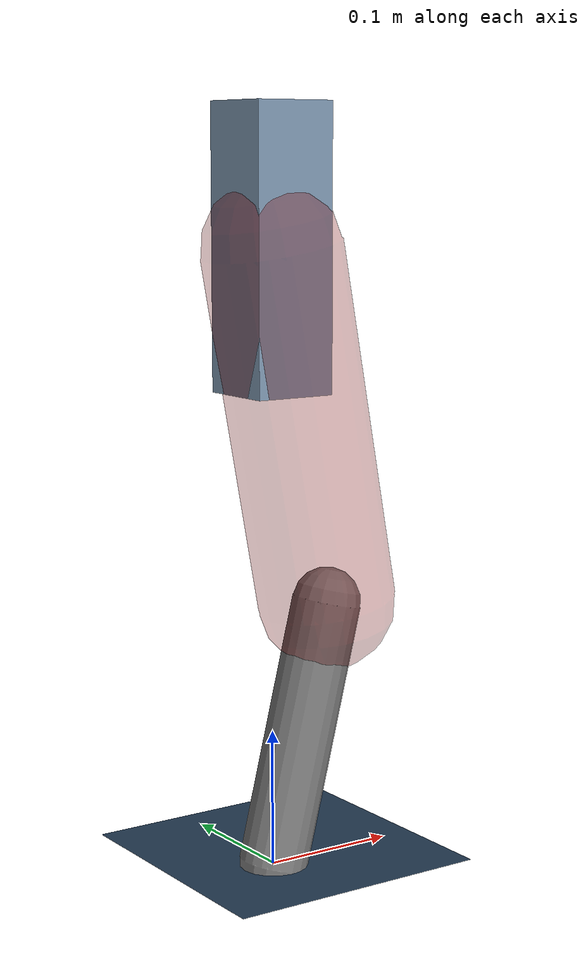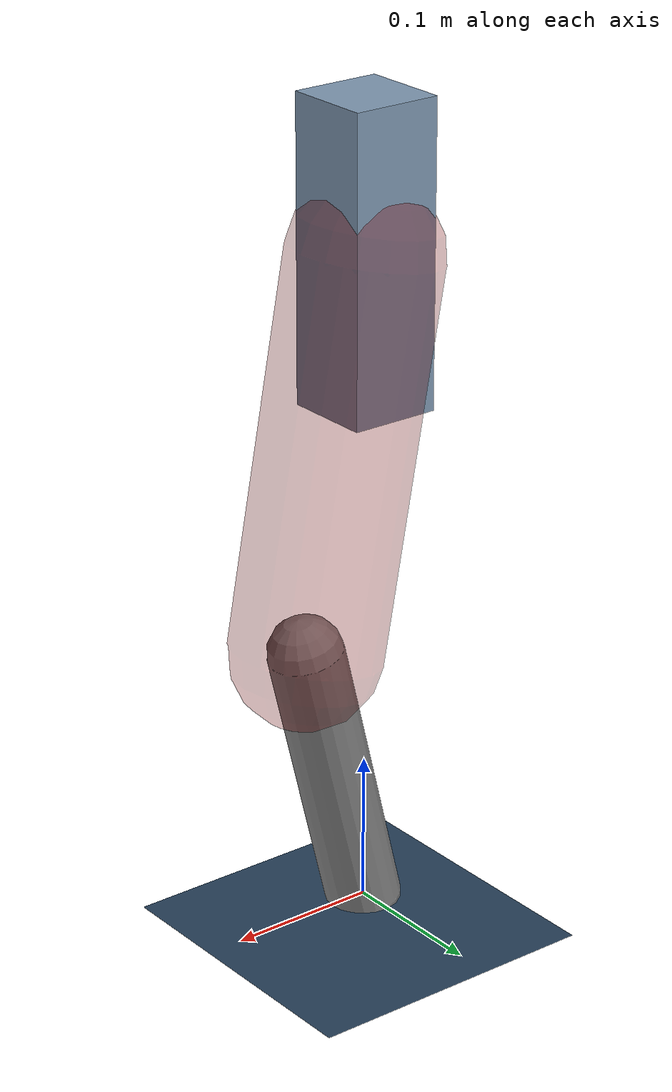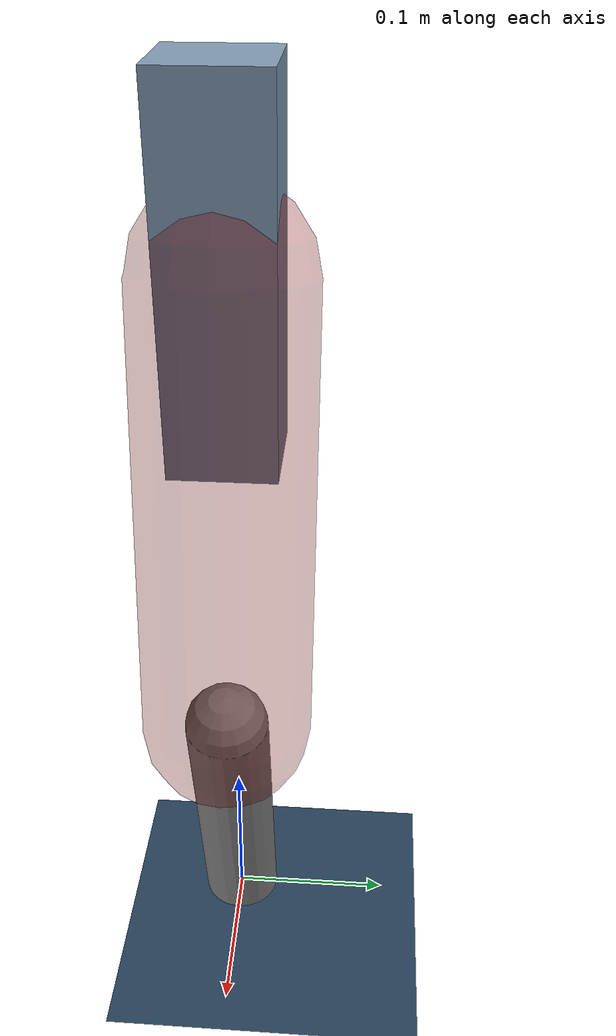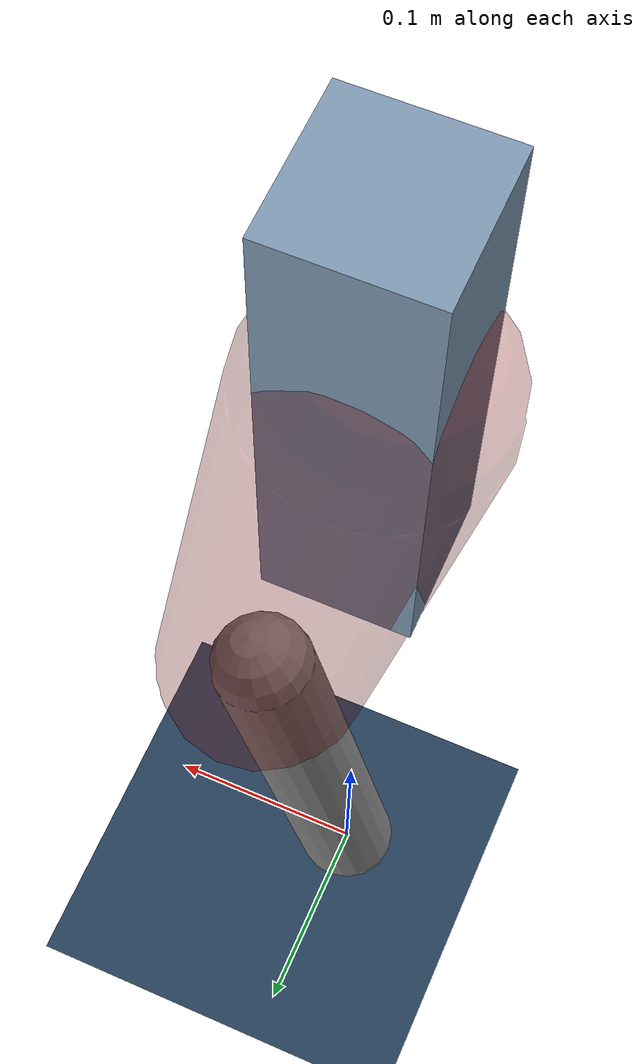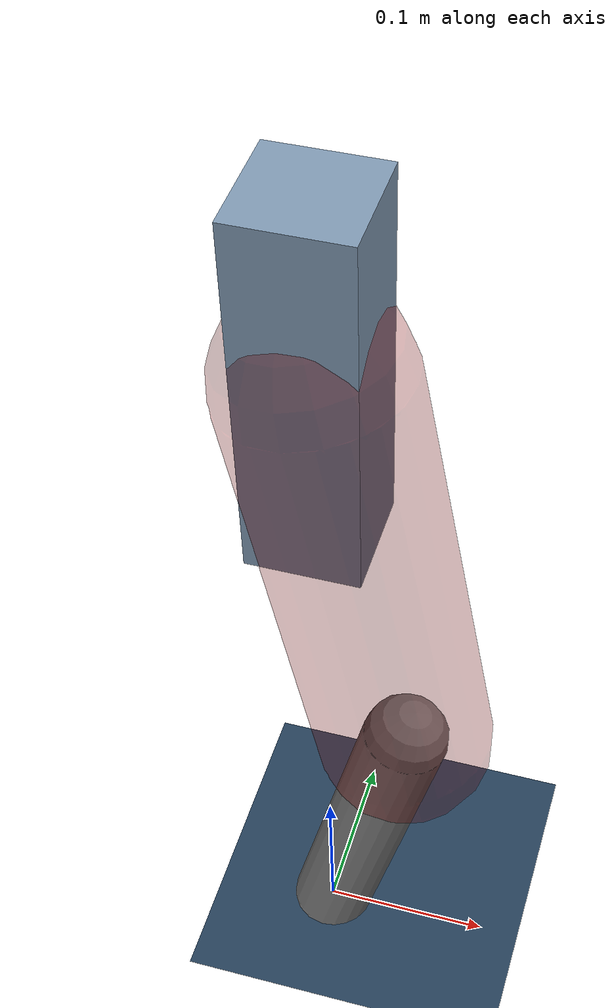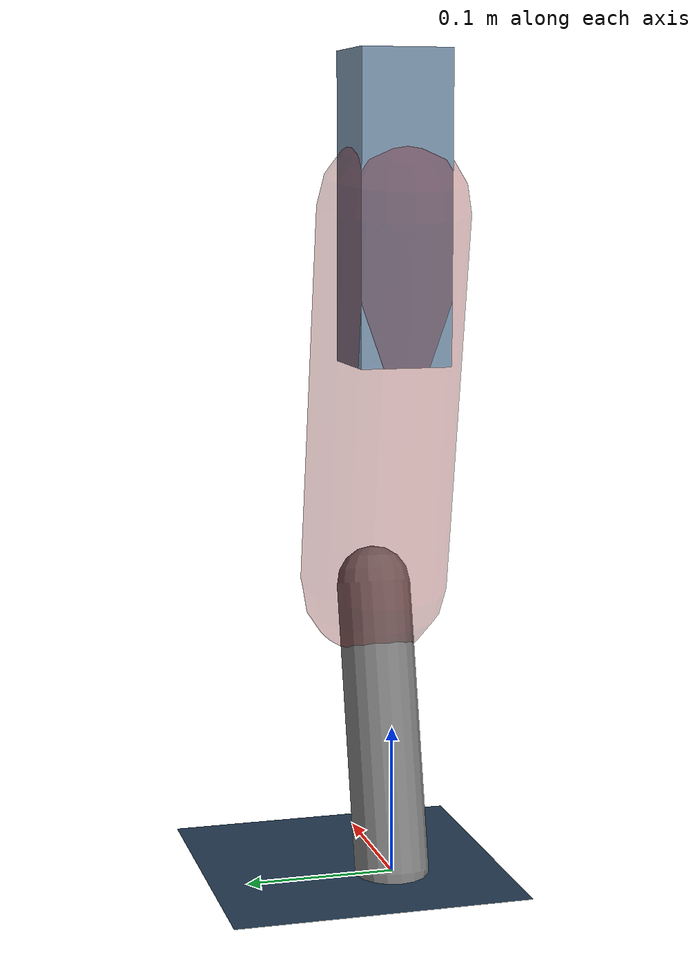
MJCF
<mujoco model="Hopper2D">
	<compiler inertiafromgeom="true" angle="radian" />
	<option timestep="0.001" integrator="implicit" cone="elliptic" solver="Newton" tolerance="1e-10" />

	<default>
		<geom contype="1" conaffinity="1" condim="3" friction="2 0.005 0.0001" solref="0.005 1" />
		<joint limited="true" damping="0.1" />
	</default>

	<asset>
		<texture name="skybox" type="skybox" builtin="gradient" rgb1=".4 .6 .8" rgb2="0 0 0" width="800" height="800" />
		<texture name="grid" type="2d" builtin="checker" rgb1=".1 .2 .3" rgb2=".2 .3 .4" width="300" height="300" mark="edge" markrgb=".2 .3 .4" />
		<material name="ground" texture="grid" texrepeat="1 1" texuniform="true" reflectance="0.1" />
		<material name="leg" rgba="0.5 0.6 0.7 1" />
	</asset>

	<worldbody>

		<geom name="floor" type="plane" size="5 5 0.25" material="ground" />

		<light directional="false" diffuse="0.8 0.8 0.8" specular="0.3 0.3 0.3" pos="0 0 2" dir="0 0 -1" />
		<light mode="targetbodycom" target="base" directional="false" diffuse="0.8 0.8 0.8" specular="0.3 0.3 0.3" pos="0 0 2" dir="0 0 -1" />

		<camera name="fixed" pos="0 -2 1" xyaxes="1 0 0 0 0 1" />
		<camera name="tracking" mode="trackcom" pos="0 -3 1" />

		<body name="root" pos="0 0 0.4446532774229899">
			<joint name="slide_x" type="slide" axis="1 0 0" range="-100 100" />
			<joint name="slide_z" type="slide" axis="0 0 1" range="0 10" />

			<body name="base" pos="0 0 0">
				<geom name="torso" type="box" size="0.03 0.03 0.1" mass="3.0940000000000003" material="leg" />

				<body name="link1" pos="0 0 0" euler="0 1.3883910835714877 0">
					<joint type="hinge" axis="0 -1 0" pos="0 0 0" name="hinge1" limited="true" range="-3.14 3.14" stiffness="0" damping="0.1" />
					<geom name="thigh" type="capsule" fromto="0 0 0 0.2587680511875028 0 0" size="0.05" rgba="0.5 0 0 0.3" mass="0.8791969330875072" />

					<body name="link2" pos="0.2587680511875028 0 0" euler="0 0.42438664348492083 0">
						<joint type="hinge" axis="0 -1 0" pos="0 0 0" name="hinge2" limited="true" range="-3.14 3.14" stiffness="0" damping="0.1" />
						<geom name="shank" type="capsule" fromto="0 0 0 0.1958852262354871 0 0" size="0.025" mass="0.3974081809883897" />

					</body>
				</body>
			</body>
		</body>
	</worldbody>

	<actuator>
		<motor name="torque1" joint="hinge1" ctrlrange="-124.76545348909819 124.76545348909819" ctrllimited="true" gear="1" />
		<motor name="torque2" joint="hinge2" ctrlrange="-120.30032214990489 120.30032214990489" ctrllimited="true" gear="1" />
	</actuator>
</mujoco>
